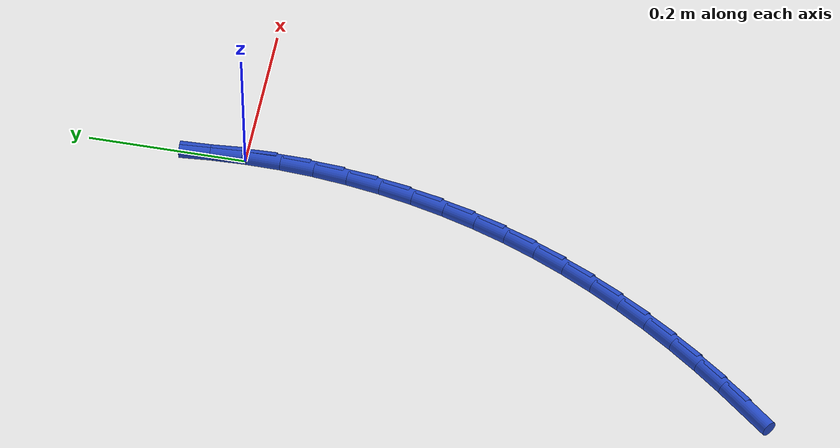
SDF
<sdf version="1.6">
 <world name="default">
  <model name="ground_plane">
   <static>1</static>
   <link name="link">
    <collision name="collision">
     <geometry><plane><normal>0 0 1</normal><size>100 100</size></plane></geometry>
     <surface><friction><ode><mu>100</mu><mu2>50</mu2></ode></friction></surface>
    </collision>
    <visual name="visual">
     <cast_shadows>0</cast_shadows>
     <geometry><plane><normal>0 0 1</normal><size>100 100</size></plane></geometry>
     <material>
      <script><uri>file://media/materials/scripts/gazebo.material</uri><name>Gazebo/WhiteGlow</name></script>
     </material>
    </visual>
   </link>
  </model>
  <model name="line">
   <link name="link_0">
    <pose>1.9081958235744878e-17 3.469446951953614e-17 0.01 0 1.57 -1.5356192879876405</pose>
    <collision name="collision">
     <geometry><cylinder><radius>0.01</radius><length>0.08</length></cylinder></geometry>
    </collision>
    <visual name="visual">
     <material>
      <script><name>Gazebo/Blue</name><uri>file://media/materials/scripts/gazebo.material</uri></script>
     </material>
     <geometry><cylinder><radius>0.01</radius><length>0.08</length></cylinder></geometry>
    </visual>
   </link>
   <link name="link_1">
    <pose>-0.0015125934707215336 0.04298171659682079 0.01 0 1.57 -1.4902976471533067</pose>
    <collision name="collision">
     <geometry><cylinder><radius>0.01</radius><length>0.08</length></cylinder></geometry>
    </collision>
    <visual name="visual">
     <material>
      <script><name>Gazebo/Blue</name><uri>file://media/materials/scripts/gazebo.material</uri></script>
     </material>
     <geometry><cylinder><radius>0.01</radius><length>0.08</length></cylinder></geometry>
    </visual>
   </link>
   <link name="link_153">
    <pose>-0.2608535168477171 -0.6735328384414155 0.01 0 1.57 0.8840038976188067</pose>
    <collision name="collision">
     <geometry><cylinder><radius>0.01</radius><length>0.08</length></cylinder></geometry>
    </collision>
    <visual name="visual">
     <material>
      <script><name>Gazebo/Blue</name><uri>file://media/materials/scripts/gazebo.material</uri></script>
     </material>
     <geometry><cylinder><radius>0.01</radius><length>0.08</length></cylinder></geometry>
    </visual>
   </link>
   <link name="link_154">
    <pose>-0.233350388891025 -0.6399907132006147 0.01 0 1.57 0.9147195803311378</pose>
    <collision name="collision">
     <geometry><cylinder><radius>0.01</radius><length>0.08</length></cylinder></geometry>
    </collision>
    <visual name="visual">
     <material>
      <script><name>Gazebo/Blue</name><uri>file://media/materials/scripts/gazebo.material</uri></script>
     </material>
     <geometry><cylinder><radius>0.01</radius><length>0.08</length></cylinder></geometry>
    </visual>
   </link>
   <link name="link_155">
    <pose>-0.20686804082148813 -0.60559079732457 0.01 0 1.57 0.9474716399005432</pose>
    <collision name="collision">
     <geometry><cylinder><radius>0.01</radius><length>0.08</length></cylinder></geometry>
    </collision>
    <visual name="visual">
     <material>
      <script><name>Gazebo/Blue</name><uri>file://media/materials/scripts/gazebo.material</uri></script>
     </material>
     <geometry><cylinder><radius>0.01</radius><length>0.08</length></cylinder></geometry>
    </visual>
   </link>
   <link name="link_156">
    <pose>-0.18152048203276394 -0.570333955202699 0.01 0 1.57 0.982343524718429</pose>
    <collision name="collision">
     <geometry><cylinder><radius>0.01</radius><length>0.08</length></cylinder></geometry>
    </collision>
    <visual name="visual">
     <material>
      <script><name>Gazebo/Blue</name><uri>file://media/materials/scripts/gazebo.material</uri></script>
     </material>
     <geometry><cylinder><radius>0.01</radius><length>0.08</length></cylinder></geometry>
    </visual>
   </link>
   <link name="link_157">
    <pose>-0.15742172191850964 -0.5342210512244179 0.01 0 1.57 1.0194091815603508</pose>
    <collision name="collision">
     <geometry><cylinder><radius>0.01</radius><length>0.08</length></cylinder></geometry>
    </collision>
    <visual name="visual">
     <material>
      <script><name>Gazebo/Blue</name><uri>file://media/materials/scripts/gazebo.material</uri></script>
     </material>
     <geometry><cylinder><radius>0.01</radius><length>0.08</length></cylinder></geometry>
    </visual>
   </link>
   <link name="link_158">
    <pose>-0.13468576987238215 -0.49725294977914264 0.01 0 1.57 1.058727971549813</pose>
    <collision name="collision">
     <geometry><cylinder><radius>0.01</radius><length>0.08</length></cylinder></geometry>
    </collision>
    <visual name="visual">
     <material>
      <script><name>Gazebo/Blue</name><uri>file://media/materials/scripts/gazebo.material</uri></script>
     </material>
     <geometry><cylinder><radius>0.01</radius><length>0.08</length></cylinder></geometry>
    </visual>
   </link>
   <link name="link_159">
    <pose>-0.11342663528803965 -0.45943051525629164 0.01 0 1.57 1.1003387687547443</pose>
    <collision name="collision">
     <geometry><cylinder><radius>0.01</radius><length>0.08</length></cylinder></geometry>
    </collision>
    <visual name="visual">
     <material>
      <script><name>Gazebo/Blue</name><uri>file://media/materials/scripts/gazebo.material</uri></script>
     </material>
     <geometry><cylinder><radius>0.01</radius><length>0.08</length></cylinder></geometry>
    </visual>
   </link>
   <link name="link_160">
    <pose>-0.09375832755913878 -0.42075461204528036 0.01 0 1.57 1.1442533717069825</pose>
    <collision name="collision">
     <geometry><cylinder><radius>0.01</radius><length>0.08</length></cylinder></geometry>
    </collision>
    <visual name="visual">
     <material>
      <script><name>Gazebo/Blue</name><uri>file://media/materials/scripts/gazebo.material</uri></script>
     </material>
     <geometry><cylinder><radius>0.01</radius><length>0.08</length></cylinder></geometry>
    </visual>
   </link>
   <link name="link_161">
    <pose>-0.07579485607933702 -0.38122610453552597 0.01 0 1.57 1.1903844926195326</pose>
    <collision name="collision">
     <geometry><cylinder><radius>0.01</radius><length>0.08</length></cylinder></geometry>
    </collision>
    <visual name="visual">
     <material>
      <script><name>Gazebo/Blue</name><uri>file://media/materials/scripts/gazebo.material</uri></script>
     </material>
     <geometry><cylinder><radius>0.01</radius><length>0.08</length></cylinder></geometry>
    </visual>
   </link>
   <link name="link_162">
    <pose>-0.05964823810146021 -0.34084848949632746 0.01 0 1.57 1.2372444053158504</pose>
    <collision name="collision">
     <geometry><cylinder><radius>0.01</radius><length>0.08</length></cylinder></geometry>
    </collision>
    <visual name="visual">
     <material>
      <script><name>Gazebo/Blue</name><uri>file://media/materials/scripts/gazebo.material</uri></script>
     </material>
     <geometry><cylinder><radius>0.01</radius><length>0.08</length></cylinder></geometry>
    </visual>
   </link>
   <link name="link_163">
    <pose>-0.0453851962828449 -0.2996851151794032 0.01 0 1.57 1.2835154735588903</pose>
    <collision name="collision">
     <geometry><cylinder><radius>0.01</radius><length>0.08</length></cylinder></geometry>
    </collision>
    <visual name="visual">
     <material>
      <script><name>Gazebo/Blue</name><uri>file://media/materials/scripts/gazebo.material</uri></script>
     </material>
     <geometry><cylinder><radius>0.01</radius><length>0.08</length></cylinder></geometry>
    </visual>
   </link>
   <link name="link_164">
    <pose>-0.03302744825086103 -0.2578587986921033 0.01 0 1.57 1.329337625810049</pose>
    <collision name="collision">
     <geometry><cylinder><radius>0.01</radius><length>0.08</length></cylinder></geometry>
    </collision>
    <visual name="visual">
     <material>
      <script><name>Gazebo/Blue</name><uri>file://media/materials/scripts/gazebo.material</uri></script>
     </material>
     <geometry><cylinder><radius>0.01</radius><length>0.08</length></cylinder></geometry>
    </visual>
   </link>
   <link name="link_165">
    <pose>-0.022594777405897333 -0.21549491299531257 0.01 0 1.57 1.3749164079820988</pose>
    <collision name="collision">
     <geometry><cylinder><radius>0.01</radius><length>0.08</length></cylinder></geometry>
    </collision>
    <visual name="visual">
     <material>
      <script><name>Gazebo/Blue</name><uri>file://media/materials/scripts/gazebo.material</uri></script>
     </material>
     <geometry><cylinder><radius>0.01</radius><length>0.08</length></cylinder></geometry>
    </visual>
   </link>
   <link name="link_166">
    <pose>-0.01410696714834296 -0.172718831049917 0.01 0 1.57 1.4204593209857197</pose>
    <collision name="collision">
     <geometry><cylinder><radius>0.01</radius><length>0.08</length></cylinder></geometry>
    </collision>
    <visual name="visual">
     <material>
      <script><name>Gazebo/Blue</name><uri>file://media/materials/scripts/gazebo.material</uri></script>
     </material>
     <geometry><cylinder><radius>0.01</radius><length>0.08</length></cylinder></geometry>
    </visual>
   </link>
   <link name="link_167">
    <pose>-0.007583800878586948 -0.12965592581680221 0.01 0 1.57 1.4661755148388314</pose>
    <collision name="collision">
     <geometry><cylinder><radius>0.01</radius><length>0.08</length></cylinder></geometry>
    </collision>
    <visual name="visual">
     <material>
      <script><name>Gazebo/Blue</name><uri>file://media/materials/scripts/gazebo.material</uri></script>
     </material>
     <geometry><cylinder><radius>0.01</radius><length>0.08</length></cylinder></geometry>
    </visual>
   </link>
   <link name="link_168">
    <pose>-0.0030450619970183307 -0.08643157025685326 0.01 0 1.57 1.5122755505560959</pose>
    <collision name="collision">
     <geometry><cylinder><radius>0.01</radius><length>0.08</length></cylinder></geometry>
    </collision>
    <visual name="visual">
     <material>
      <script><name>Gazebo/Blue</name><uri>file://media/materials/scripts/gazebo.material</uri></script>
     </material>
     <geometry><cylinder><radius>0.01</radius><length>0.08</length></cylinder></geometry>
    </visual>
   </link>
   <link name="link_169">
    <pose>-0.0005105339040263543 -0.04317113733095755 0.01 0 1.57 1.5589710625509714</pose>
    <collision name="collision">
     <geometry><cylinder><radius>0.01</radius><length>0.08</length></cylinder></geometry>
    </collision>
    <visual name="visual">
     <material>
      <script><name>Gazebo/Blue</name><uri>file://media/materials/scripts/gazebo.material</uri></script>
     </material>
     <geometry><cylinder><radius>0.01</radius><length>0.08</length></cylinder></geometry>
    </visual>
   </link>
   <link name="link_170">
    <pose>1.734723475976807e-18 -3.469446951953614e-17 0.01 0 1.57 -1.5351185088759673</pose>
    <collision name="collision">
     <geometry><cylinder><radius>0.01</radius><length>0.08</length></cylinder></geometry>
    </collision>
    <visual name="visual">
     <material>
      <script><name>Gazebo/Blue</name><uri>file://media/materials/scripts/gazebo.material</uri></script>
     </material>
     <geometry><cylinder><radius>0.01</radius><length>0.08</length></cylinder></geometry>
    </visual>
   </link>
   <link name="link_171">
    <pose>-0.0015332436853283376 0.042956468775133476 0.01 0 1.57 -1.535118508875967</pose>
    <collision name="collision">
     <geometry><cylinder><radius>0.01</radius><length>0.08</length></cylinder></geometry>
    </collision>
    <visual name="visual">
     <material>
      <script><name>Gazebo/Blue</name><uri>file://media/materials/scripts/gazebo.material</uri></script>
     </material>
     <geometry><cylinder><radius>0.01</radius><length>0.08</length></cylinder></geometry>
    </visual>
   </link>
  </model>
 </world>
</sdf>
